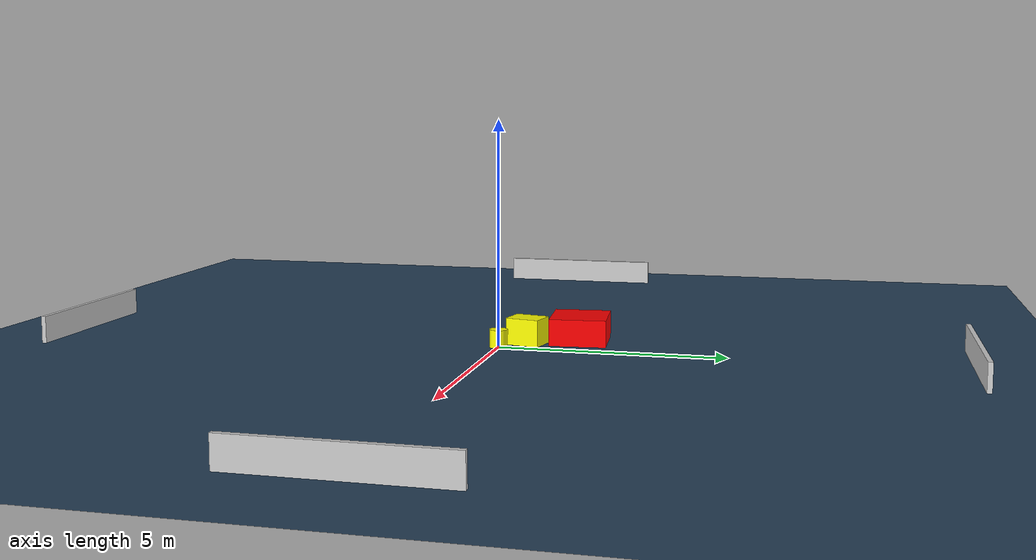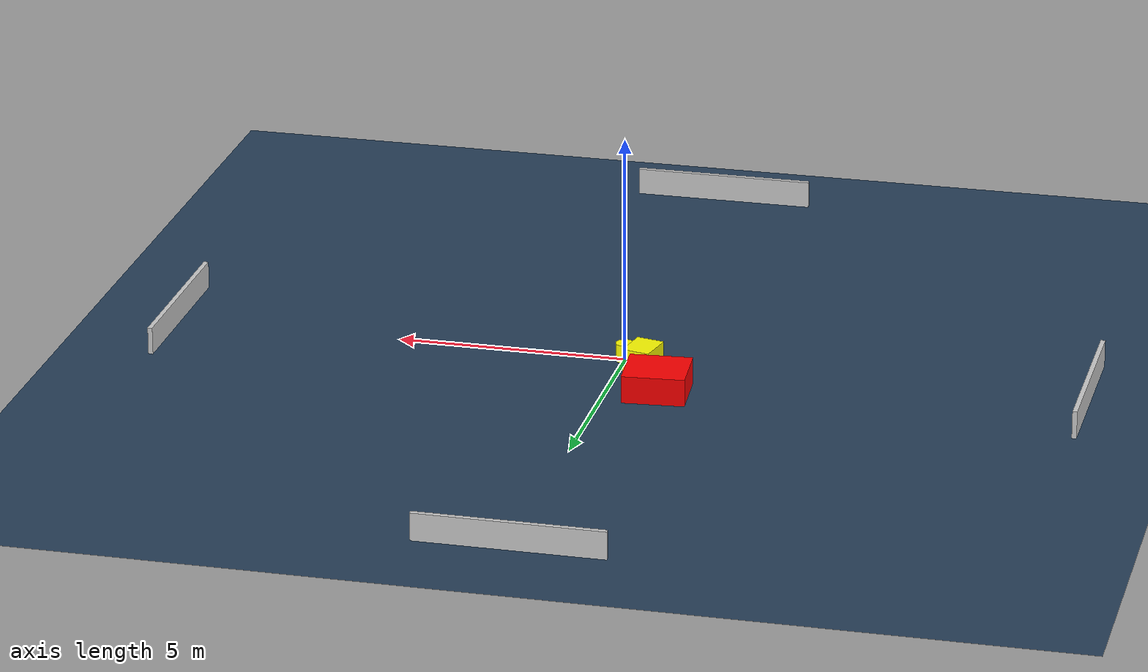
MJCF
<?xml version="1.0" ?>
<mujoco model="generated_environment">
  <option timestep="0.01" integrator="RK4" cone="elliptic"/>
  <default>
    <geom density="1"/>
  </default>
  <asset>
    <texture builtin="gradient" height="3072" name="skybox" rgb1="0.3 0.5 0.7" rgb2="0 0 0" type="skybox" width="512"/>
    <texture builtin="checker" height="300" name="groundplane" rgb1="0.2 0.3 0.4" rgb2="0.1 0.2 0.3" type="2d" width="300"/>
    <material name="groundplane" reflectance="0.2" texrepeat="5 5" texture="groundplane"/>
  </asset>
  <worldbody>
    <light dir="0 0 -1" directional="true" pos="0 0 1.5"/>
    <geom condim="3" friction="0.5 0.005 0.001" material="groundplane" name="floor" pos="0 0 0" size="0 0 0.05" type="plane"/>
    <body name="walls">
      <geom name="wall_1" condim="4" pos="-10.0 0.0 0.3" rgba="0.800000011920929 0.800000011920929 0.800000011920929 1.0" size="0.05 2.0 0.3" type="box"/>
      <geom name="wall_2" condim="4" pos="10.0 0.0 0.3" rgba="0.800000011920929 0.800000011920929 0.800000011920929 1.0" size="0.05 2.0 0.3" type="box"/>
      <geom name="wall_3" condim="4" pos="0.0 -10.0 0.3" rgba="0.800000011920929 0.800000011920929 0.800000011920929 1.0" size="2.0 0.05 0.3" type="box"/>
      <geom name="wall_4" condim="4" pos="0.0 10.0 0.3" rgba="0.800000011920929 0.800000011920929 0.800000011920929 1.0" size="2.0 0.05 0.3" type="box"/>
    </body>
    <body name="robot">
      <joint name="joint_x" type="slide" pos="0 0 0" axis="1 0 0"/>
      <joint name="joint_y" type="slide" pos="0 0 0" axis="0 1 0"/>
      <geom name="robot" type="cylinder" pos="0.0 0.0 0.2" size="0.2 0.2 0.0" mass="5.0" friction="1.0 0.005 0.0001" condim="4" rgba="1.0 1.0 0.0 1.0"/>
    </body>
    <body name="obstacle_1_movable">
      <geom name="obstacle_1_movable" condim="4" pos="-0.519109455031296 0.5321650613312203 0.3" euler="0 0 167.4601208922145" friction="0.0 0.005 0.001" rgba="1.0 1.0 0.0 1.0" size="0.30560458558418807 0.3843528628224535 0.3" type="box" mass="0.1"/>
      <joint type="free"/>
    </body>
    <body name="obstacle_2_static">
      <geom name="obstacle_2_static" condim="4" pos="-1.0760540891786228 1.6305085008065883 0.3" euler="0 0 94.49761546353918" friction="0.0 0.005 0.001" rgba="1.0 0.0 0.0 1.0" size="0.631258482299722 0.6746629431512599 0.3" type="box"/>
    </body>
  </worldbody>
  <actuator>
    <motor name="actuator_x" joint="joint_x" gear="1" ctrlrange="-1 1"/>
    <motor name="actuator_y" joint="joint_y" gear="1" ctrlrange="-1 1"/>
  </actuator>
</mujoco>
